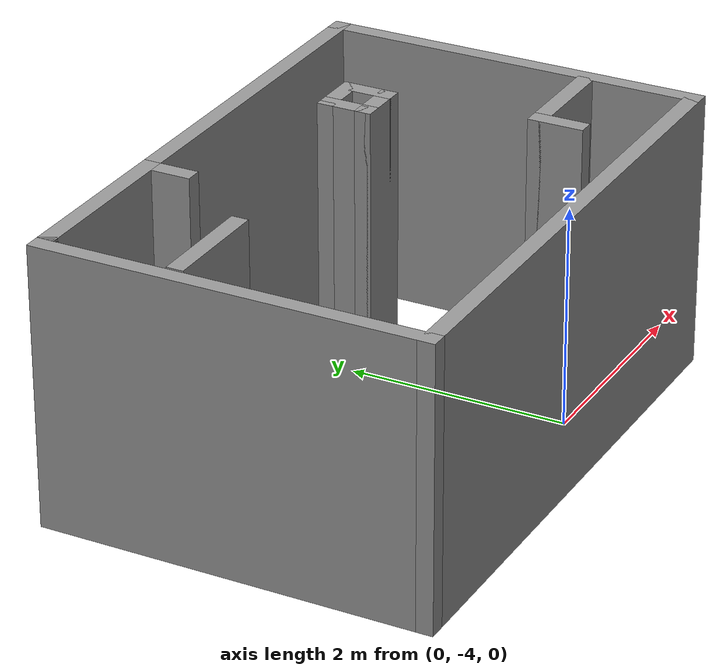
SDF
<?xml version='1.0'?>
<sdf version='1.6'>
  <model name='sim_simple'>
    <pose frame=''>-0.945 -2.765 0 0 -0 0</pose>
    <link name='Wall_0'>
      <collision name='Wall_0_Collision'>
        <geometry>
          <box>
            <size>5 0.15 2.5</size>
          </box>
        </geometry>
        <pose frame=''>0 0 1.25 0 -0 0</pose>
      </collision>
      <visual name='Wall_0_Visual'>
        <pose frame=''>0 0 1.25 0 -0 0</pose>
        <geometry>
          <box>
            <size>5 0.15 2.5</size>
          </box>
        </geometry>
        <material>
          <script>
            <uri>file://media/materials/scripts/gazebo.material</uri>
            <name>Gazebo/Grey</name>
          </script>
          <ambient>1 1 1 1</ambient>
        </material>
      </visual>
      <pose frame=''>0 1.675 0 0 -0 0</pose>
    </link>
    <link name='Wall_1'>
      <collision name='Wall_1_Collision'>
        <geometry>
          <box>
            <size>3.5 0.15 2.5</size>
          </box>
        </geometry>
        <pose frame=''>0 0 1.25 0 -0 0</pose>
      </collision>
      <visual name='Wall_1_Visual'>
        <pose frame=''>0 0 1.25 0 -0 0</pose>
        <geometry>
          <box>
            <size>3.5 0.15 2.5</size>
          </box>
        </geometry>
        <material>
          <script>
            <uri>file://media/materials/scripts/gazebo.material</uri>
            <name>Gazebo/Grey</name>
          </script>
          <ambient>1 1 1 1</ambient>
        </material>
      </visual>
      <pose frame=''>2.425 0 0 0 0 -1.5708</pose>
    </link>
    <link name='Wall_10'>
      <collision name='Wall_10_Collision'>
        <geometry>
          <box>
            <size>0.5 0.15 2.5</size>
          </box>
        </geometry>
        <pose frame=''>0 0 1.25 0 -0 0</pose>
      </collision>
      <visual name='Wall_10_Visual'>
        <pose frame=''>0 0 1.25 0 -0 0</pose>
        <geometry>
          <box>
            <size>0.5 0.15 2.5</size>
          </box>
        </geometry>
        <material>
          <script>
            <uri>file://media/materials/scripts/gazebo.material</uri>
            <name>Gazebo/Grey</name>
          </script>
          <ambient>1 1 1 1</ambient>
        </material>
      </visual>
      <pose frame=''>0.946301 0.806568 0 0 0 -1.5708</pose>
    </link>
    <link name='Wall_11'>
      <collision name='Wall_11_Collision'>
        <geometry>
          <box>
            <size>0.5 0.15 2.5</size>
          </box>
        </geometry>
        <pose frame=''>0 0 1.25 0 -0 0</pose>
      </collision>
      <visual name='Wall_11_Visual'>
        <pose frame=''>0 0 1.25 0 -0 0</pose>
        <geometry>
          <box>
            <size>0.5 0.15 2.5</size>
          </box>
        </geometry>
        <material>
          <script>
            <uri>file://media/materials/scripts/gazebo.material</uri>
            <name>Gazebo/Grey</name>
          </script>
          <ambient>1 1 1 1</ambient>
        </material>
      </visual>
      <pose frame=''>1.1213 0.631567 0 0 -0 0</pose>
    </link>
    <link name='Wall_12'>
      <collision name='Wall_12_Collision'>
        <geometry>
          <box>
            <size>0.5 0.15 2.5</size>
          </box>
        </geometry>
        <pose frame=''>0 0 1.25 0 -0 0</pose>
      </collision>
      <visual name='Wall_12_Visual'>
        <pose frame=''>0 0 1.25 0 -0 0</pose>
        <geometry>
          <box>
            <size>0.5 0.15 2.5</size>
          </box>
        </geometry>
        <material>
          <script>
            <uri>file://media/materials/scripts/gazebo.material</uri>
            <name>Gazebo/Grey</name>
          </script>
          <ambient>1 1 1 1</ambient>
        </material>
      </visual>
      <pose frame=''>1.2963 0.806568 0 0 -0 1.5708</pose>
    </link>
    <link name='Wall_13'>
      <collision name='Wall_13_Collision'>
        <geometry>
          <box>
            <size>0.5 0.15 2.5</size>
          </box>
        </geometry>
        <pose frame=''>0 0 1.25 0 -0 0</pose>
      </collision>
      <visual name='Wall_13_Visual'>
        <pose frame=''>0 0 1.25 0 -0 0</pose>
        <geometry>
          <box>
            <size>0.5 0.15 2.5</size>
          </box>
        </geometry>
        <material>
          <script>
            <uri>file://media/materials/scripts/gazebo.material</uri>
            <name>Gazebo/Grey</name>
          </script>
          <ambient>1 1 1 1</ambient>
        </material>
      </visual>
      <pose frame=''>1.1213 0.981568 0 0 -0 3.14159</pose>
    </link>
    <link name='Wall_15'>
      <collision name='Wall_15_Collision'>
        <geometry>
          <box>
            <size>1 0.15 2.5</size>
          </box>
        </geometry>
        <pose frame=''>0 0 1.25 0 -0 0</pose>
      </collision>
      <visual name='Wall_15_Visual'>
        <pose frame=''>0 0 1.25 0 -0 0</pose>
        <geometry>
          <box>
            <size>1 0.15 2.5</size>
          </box>
        </geometry>
        <material>
          <script>
            <uri>file://media/materials/scripts/gazebo.material</uri>
            <name>Gazebo/Grey</name>
          </script>
          <ambient>1 1 1 1</ambient>
        </material>
      </visual>
      <pose frame=''>1.88902 -0.707973 0 0 -0 3.14159</pose>
    </link>
    <link name='Wall_16'>
      <collision name='Wall_16_Collision'>
        <geometry>
          <box>
            <size>0.5 0.15 2.5</size>
          </box>
        </geometry>
        <pose frame=''>0 0 1.25 0 -0 0</pose>
      </collision>
      <visual name='Wall_16_Visual'>
        <pose frame=''>0 0 1.25 0 -0 0</pose>
        <geometry>
          <box>
            <size>0.5 0.15 2.5</size>
          </box>
        </geometry>
        <material>
          <script>
            <uri>file://media/materials/scripts/gazebo.material</uri>
            <name>Gazebo/Grey</name>
          </script>
          <ambient>1 1 1 1</ambient>
        </material>
      </visual>
      <pose frame=''>1.46402 -0.882972 0 0 0 -1.5708</pose>
    </link>
    <link name='Wall_3'>
      <collision name='Wall_3_Collision'>
        <geometry>
          <box>
            <size>5 0.15 2.5</size>
          </box>
        </geometry>
        <pose frame=''>0 0 1.25 0 -0 0</pose>
      </collision>
      <visual name='Wall_3_Visual'>
        <pose frame=''>0 0 1.25 0 -0 0</pose>
        <geometry>
          <box>
            <size>5 0.15 2.5</size>
          </box>
        </geometry>
        <material>
          <script>
            <uri>file://media/materials/scripts/gazebo.material</uri>
            <name>Gazebo/Grey</name>
          </script>
          <ambient>1 1 1 1</ambient>
        </material>
      </visual>
      <pose frame=''>0 -1.675 0 0 -0 3.14159</pose>
    </link>
    <link name='Wall_4'>
      <collision name='Wall_4_Collision'>
        <geometry>
          <box>
            <size>3.5 0.15 2.5</size>
          </box>
        </geometry>
        <pose frame=''>0 0 1.25 0 -0 0</pose>
      </collision>
      <visual name='Wall_4_Visual'>
        <pose frame=''>0 0 1.25 0 -0 0</pose>
        <geometry>
          <box>
            <size>3.5 0.15 2.5</size>
          </box>
        </geometry>
        <material>
          <script>
            <uri>file://media/materials/scripts/gazebo.material</uri>
            <name>Gazebo/Grey</name>
          </script>
          <ambient>1 1 1 1</ambient>
        </material>
      </visual>
      <pose frame=''>-2.425 0 0 0 -0 1.5708</pose>
    </link>
    <link name='Wall_5'>
      <collision name='Wall_5_Collision'>
        <geometry>
          <box>
            <size>1.75 0.15 2.5</size>
          </box>
        </geometry>
        <pose frame=''>0 0 1.25 0 -0 0</pose>
      </collision>
      <visual name='Wall_5_Visual'>
        <pose frame=''>0 0 1.25 0 -0 0</pose>
        <geometry>
          <box>
            <size>1.75 0.15 2.5</size>
          </box>
        </geometry>
        <material>
          <script>
            <uri>file://media/materials/scripts/gazebo.material</uri>
            <name>Gazebo/Grey</name>
          </script>
          <ambient>1 1 1 1</ambient>
        </material>
      </visual>
      <pose frame=''>-1.625 1.675 0 0 -0 0</pose>
    </link>
    <link name='Wall_6'>
      <collision name='Wall_6_Collision'>
        <geometry>
          <box>
            <size>0.5 0.15 2.5</size>
          </box>
        </geometry>
        <pose frame=''>0 0 1.25 0 -0 0</pose>
      </collision>
      <visual name='Wall_6_Visual'>
        <pose frame=''>0 0 1.25 0 -0 0</pose>
        <geometry>
          <box>
            <size>0.5 0.15 2.5</size>
          </box>
        </geometry>
        <material>
          <script>
            <uri>file://media/materials/scripts/gazebo.material</uri>
            <name>Gazebo/Grey</name>
          </script>
          <ambient>1 1 1 1</ambient>
        </material>
      </visual>
      <pose frame=''>-0.825 1.5 0 0 0 -1.5708</pose>
    </link>
    <link name='Wall_8'>
      <collision name='Wall_8_Collision'>
        <geometry>
          <box>
            <size>1 0.15 2.5</size>
          </box>
        </geometry>
        <pose frame=''>0 0 1.25 0 -0 0</pose>
      </collision>
      <visual name='Wall_8_Visual'>
        <pose frame=''>0 0 1.25 0 -0 0</pose>
        <geometry>
          <box>
            <size>1 0.15 2.5</size>
          </box>
        </geometry>
        <material>
          <script>
            <uri>file://media/materials/scripts/gazebo.material</uri>
            <name>Gazebo/Grey</name>
          </script>
          <ambient>1 1 1 1</ambient>
        </material>
      </visual>
      <pose frame=''>-1.82676 0.539069 0 0 -0 0</pose>
    </link>
    <static>1</static>
  </model>
</sdf>
